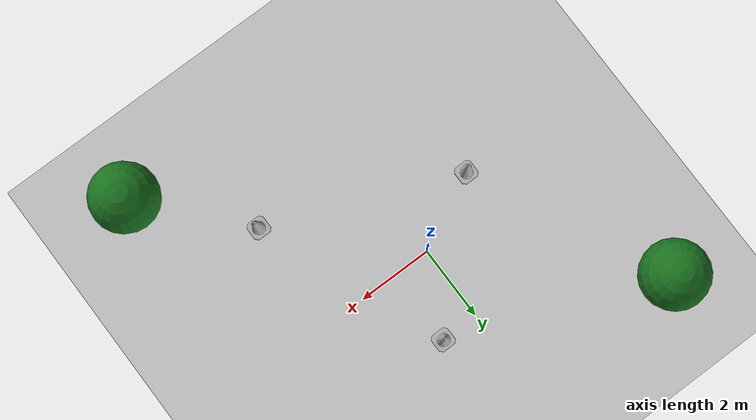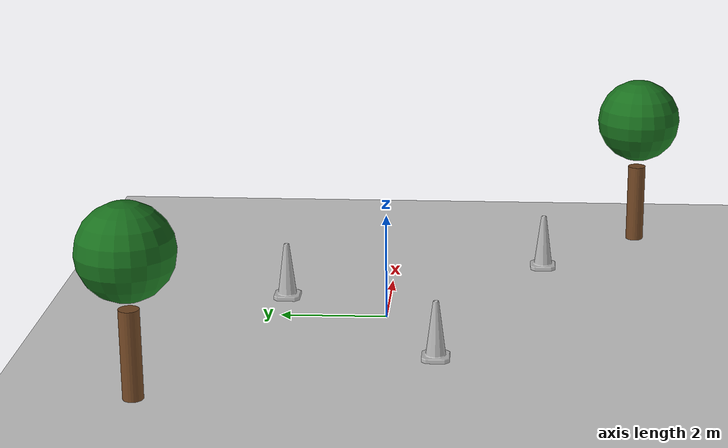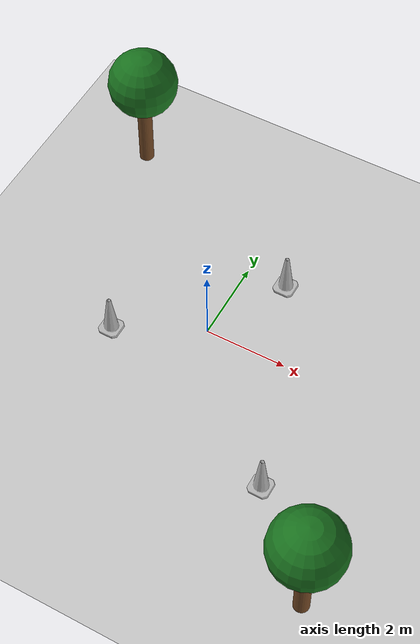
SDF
<?xml version="1.0"?>
<sdf version="1.6">
  <world name="drone_world">
    <!-- Physics and Lighting Settings -->
    <physics type="ode">
      <max_step_size>0.01</max_step_size>
      <real_time_factor>1</real_time_factor>
    </physics>
    <scene>
      <ambient>0.4 0.4 0.4 1</ambient>
      <background>0.7 0.7 0.7 1</background>
    </scene>
    <gravity>0 0 -9.8</gravity>

    <!-- Ground Plane -->
    <include>
      <uri>model://ground_plane</uri>
    </include>

    <!-- Sun -->
    <include>
      <uri>model://sun</uri>
    </include>

    <!-- Traffic Cones -->
    <include>
      <uri>model://construction_cone</uri>
      <pose>1 2 0 0 0 0</pose>
    </include>
    <include>
      <uri>model://construction_cone</uri>
      <pose>-2 -1 0 0 0 0</pose>
    </include>
    <include>
      <uri>model://construction_cone</uri>
      <pose>3 -3 0 0 0 0</pose>
    </include>

    <!-- Trees -->
    <include>
      <uri>model://simple_tree</uri>
      <pose>-4 4 0 0 0 0</pose>
    </include>
    <include>
      <uri>model://simple_tree</uri>
      <pose>5 -5 0 0 0 0</pose>
    </include>
  </world>
</sdf>

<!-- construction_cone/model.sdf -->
<sdf version="1.5">
  <model name="Construction Cone">
    <link name="link">
      <collision name="collision">
        <geometry>
          <mesh>
            <scale>10 10 10</scale>
            <uri>file://isr-testbed/construction_cone/meshes/construction_cone.dae</uri>
          </mesh>
        </geometry>
      </collision>
      <visual name="visual">
        <geometry>
          <mesh>
            <scale>10 10 10</scale>
            <uri>file://isr-testbed/construction_cone/meshes/construction_cone.dae</uri>
          </mesh>
        </geometry>
      </visual>
    </link>
  </model>
</sdf>

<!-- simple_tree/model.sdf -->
<sdf version="1.8">
  <model name="simple_tree">
    <static>true</static>
    <link name="link">
      <!-- Trunk -->
      <pose>0 0 0.8 0 0 0</pose>
      <collision name="trunk_collision">
        <geometry>
          <cylinder>
            <radius>0.18</radius>
            <length>1.6</length>
          </cylinder>
        </geometry>
      </collision>
      <visual name="trunk_visual">
        <geometry>
          <cylinder>
            <radius>0.18</radius>
            <length>1.6</length>
          </cylinder>
        </geometry>
        <material>
          <ambient>0.35 0.22 0.12 1</ambient>
          <diffuse>0.45 0.28 0.14 1</diffuse>
          <specular>0.05 0.05 0.05 1</specular>
        </material>
      </visual>

      <!-- Foliage canopy (simple ellipsoid using scaled sphere) -->
      <collision name="canopy_collision">
        <pose>0 0 1.8 0 0 0</pose>
        <geometry>
          <sphere>
            <radius>0.85</radius>
          </sphere>
        </geometry>
      </collision>
      <visual name="canopy_visual">
        <pose>0 0 1.8 0 0 0</pose>
        <geometry>
          <sphere>
            <radius>0.85</radius>
          </sphere>
        </geometry>
        <material>
          <ambient>0.12 0.25 0.12 1</ambient>
          <diffuse>0.10 0.45 0.12 1</diffuse>
          <specular>0.02 0.02 0.02 1</specular>
        </material>
      </visual>
    </link>
  </model>
</sdf>
